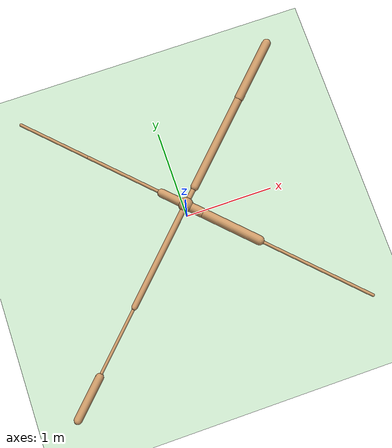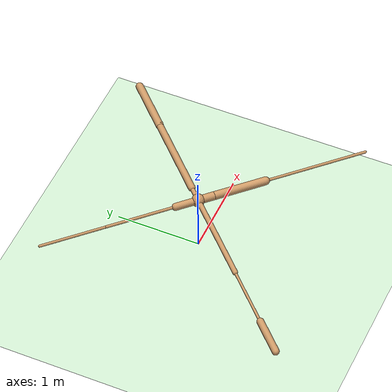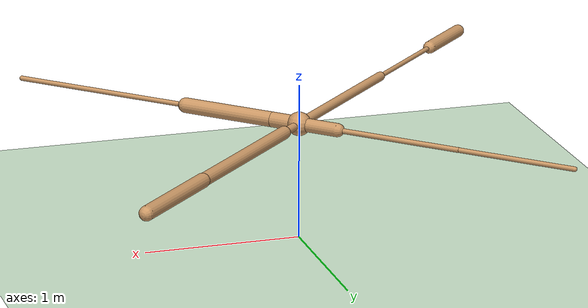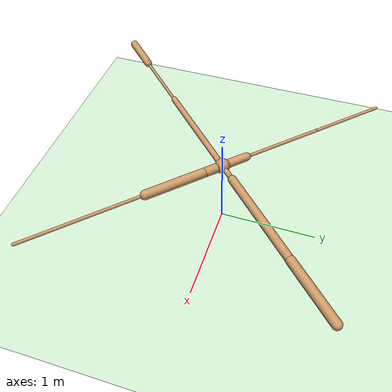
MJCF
<mujoco model="ant">
  <compiler angle="degree" coordinate="local" inertiafromgeom="true" />
  <option integrator="RK4" timestep="0.01" />
  <custom>
    <numeric data="0.0 0.0 0.55 1.0 0.0 0.0 0.0 0.0 1.0 0.0 -1.0 0.0 -1.0 0.0 1.0" name="init_qpos" />
  </custom>
  <default>
    <joint armature="1" damping="1" limited="true" />
    <geom conaffinity="0" condim="3" density="5.0" friction="1 0.5 0.5" margin="0.01" rgba="0.8 0.6 0.4 1" />
  </default>
  <asset>
    <texture builtin="gradient" height="100" rgb1="1 1 1" rgb2="0 0 0" type="skybox" width="100" />
    <texture builtin="flat" height="1278" mark="cross" markrgb="1 1 1" name="texgeom" random="0.01" rgb1="0.8 0.6 0.4" rgb2="0.8 0.6 0.4" type="cube" width="127" />
    <texture builtin="checker" height="100" name="texplane" rgb1="0 0 0" rgb2="0.8 0.8 0.8" type="2d" width="100" />
    <material name="MatPlane" reflectance="0.5" shininess="1" specular="1" texrepeat="60 60" texture="texplane" />
    <material name="geom" texture="texgeom" texuniform="true" />
  </asset>
  <worldbody>
    <light cutoff="100" diffuse="1 1 1" dir="-0 0 -1.3" directional="true" exponent="1" pos="0 0 1.3" specular=".1 .1 .1" />
    <geom conaffinity="1" condim="3" material="MatPlane" name="floor" pos="0 0 0" rgba="0.8 0.9 0.8 1" size="40 40 40" type="plane" />
    <body name="torso" pos="0 0 0.75">
      <camera name="track" mode="trackcom" pos="0 -11 5" xyaxes="1 0 0 0 0.5 1" />
      <geom name="torso_geom" pos="0 0 0" size="0.07552724331617355" type="sphere" />
      <joint armature="0" damping="0" limited="false" margin="0.01" name="root" pos="0 0 0" type="free" />
      <body name="front_left_leg" pos="0 0 0">
        <geom fromto="0 0 0 0.14213325083255768 0.14213325083255768 0" name="aux_1_geom" size="0.025967305526137352" type="capsule" />
        <body name="aux_1" pos="0.14213325083255768 0.14213325083255768 0">
          <joint axis="0 0 1" name="hip_1" pos="0.0 0.0 0.0" range="-30 30" type="hinge" />
          <geom fromto="0 0 0 0.7285474538803101 0.7285474538803101 0" name="left_leg_geom" size="0.04180385172367096" type="capsule" />
          <body name="left_leg_geom_aux" pos="0.7285474538803101 0.7285474538803101 0">
            <joint axis="-1 1 0" name="ankle_1" pos="0.0 0.0 0.0" range="30 70" type="hinge" />
            <geom fromto="0 0 0 0.46825695037841797 0.46825695037841797 0" name="left_ankle_geom" size="0.046159230172634125" type="capsule" />
          </body>
        </body>
      </body>
      <body name="front_right_leg" pos="0 0 0">
        <geom fromto="0 0 0 -0.19058114290237427 0.19058114290237427 0" name="aux_2_geom" size="0.04306768998503685" type="capsule" />
        <body name="aux_2" pos="-0.19058114290237427 0.19058114290237427 0">
          <joint axis="0 0 1" name="hip_2" pos="0.0 0.0 0.0" range="-30 30" type="hinge" />
          <geom fromto="0 0 0 -0.5854096412658691 0.5854096412658691 0" name="right_leg_geom" size="0.016488954424858093" type="capsule" />
          <body name="right_leg_geom_aux" pos="-0.5854096412658691 0.5854096412658691 0">
            <joint axis="1 1 0" name="ankle_2" pos="0.0 0.0 0.0" range="-70 -30" type="hinge" />
            <geom fromto="0 0 0 -0.5457220673561096 0.5457220673561096 0" name="right_ankle_geom" size="0.015568453818559647" type="capsule" />
          </body>
        </body>
      </body>
      <body name="back_leg" pos="0 0 0">
        <geom fromto="0 0 0 -0.7972182631492615 -0.7972182631492615 0" name="aux_3_geom" size="0.030337238684296608" type="capsule" />
        <body name="aux_3" pos="-0.7972182631492615 -0.7972182631492615 0">
          <joint axis="0 0 1" name="hip_3" pos="0.0 0.0 0.0" range="-30 30" type="hinge" />
          <geom fromto="0 0 0 -0.521283745765686 -0.521283745765686 0" name="back_leg_geom" size="0.0151502825319767" type="capsule" />
          <body name="back_leg_geom_aux" pos="-0.521283745765686 -0.521283745765686 0">
            <joint axis="-1 1 0" name="ankle_3" pos="0.0 0.0 0.0" range="-70 -30" type="hinge" />
            <geom fromto="0 0 0 -0.3096351623535156 -0.3096351623535156 0" name="third_ankle_geom" size="0.04167180508375168" type="capsule" />
          </body>
        </body>
      </body>
      <body name="right_back_leg" pos="0 0 0">
        <geom fromto="0 0 0 0.13509158790111542 -0.13509158790111542 0" name="aux_4_geom" size="0.0484333299100399" type="capsule" />
        <body name="aux_4" pos="0.13509158790111542 -0.13509158790111542 0">
          <joint axis="0 0 1" name="hip_4" pos="0.0 0.0 0.0" range="-30 30" type="hinge" />
          <geom fromto="0 0 0 0.4391758143901825 -0.4391758143901825 0" name="rightback_leg_geom" size="0.048427775502204895" type="capsule" />
          <body name="rightback_leg_geom_aux" pos="0.4391758143901825 -0.4391758143901825 0">
            <joint axis="1 1 0" name="ankle_4" pos="0.0 0.0 0.0" range="30 70" type="hinge" />
            <geom fromto="0 0 0 0.8641374707221985 -0.8641374707221985 0" name="fourth_ankle_geom" size="0.01567268557846546" type="capsule" />
          </body>
        </body>
      </body>
    </body>
  </worldbody>
  <actuator>
    <motor ctrllimited="true" ctrlrange="-1.0 1.0" joint="hip_4" gear="150" />
    <motor ctrllimited="true" ctrlrange="-1.0 1.0" joint="ankle_4" gear="150" />
    <motor ctrllimited="true" ctrlrange="-1.0 1.0" joint="hip_1" gear="150" />
    <motor ctrllimited="true" ctrlrange="-1.0 1.0" joint="ankle_1" gear="150" />
    <motor ctrllimited="true" ctrlrange="-1.0 1.0" joint="hip_2" gear="150" />
    <motor ctrllimited="true" ctrlrange="-1.0 1.0" joint="ankle_2" gear="150" />
    <motor ctrllimited="true" ctrlrange="-1.0 1.0" joint="hip_3" gear="150" />
    <motor ctrllimited="true" ctrlrange="-1.0 1.0" joint="ankle_3" gear="150" />
  </actuator>
</mujoco>
